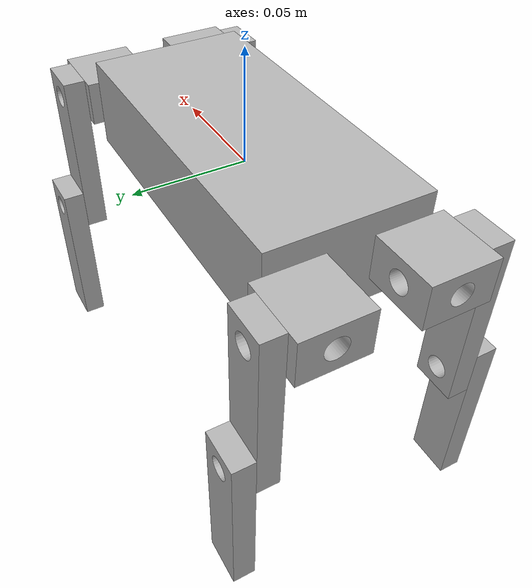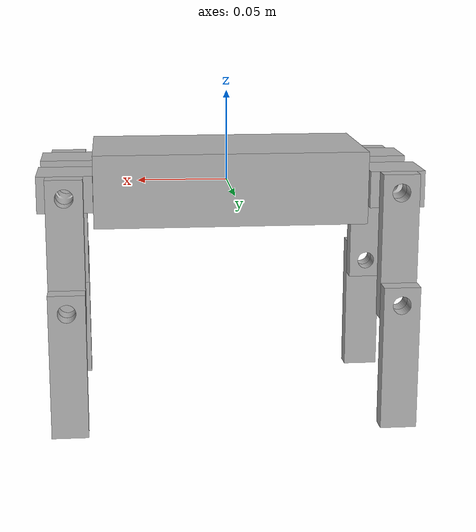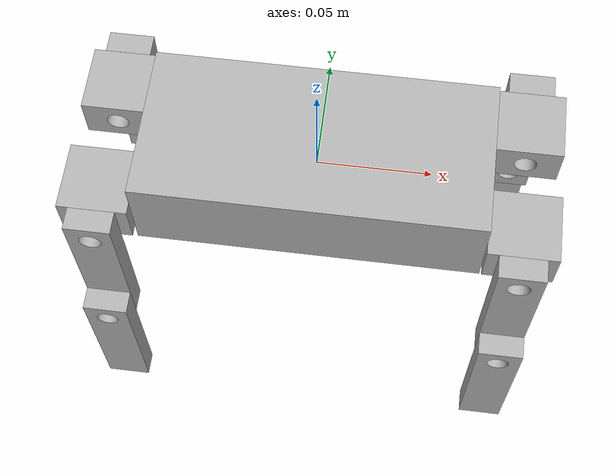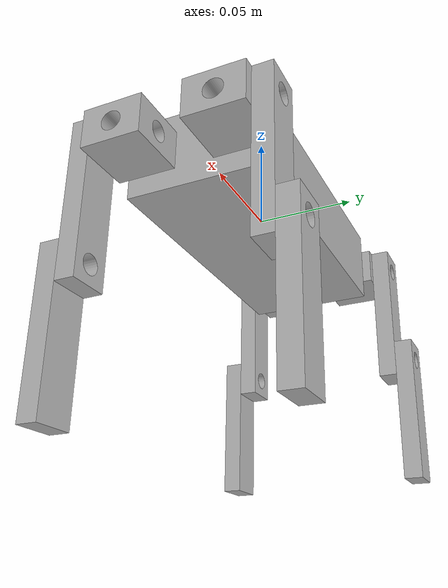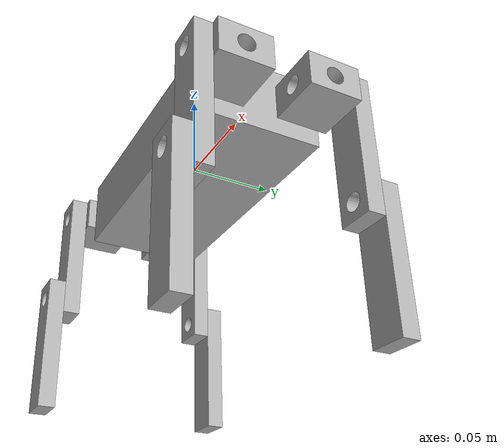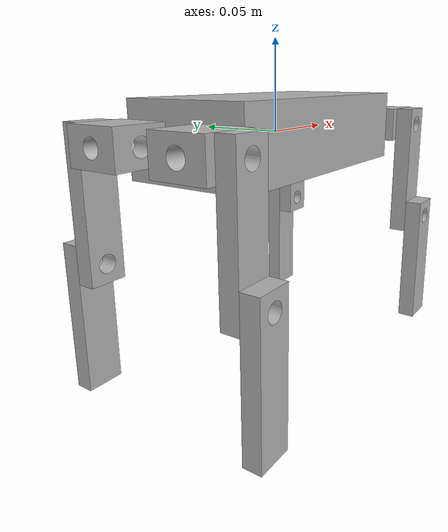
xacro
<?xml version="1.0" ?>
<robot name="dot" xmlns:xacro="http://www.ros.org/wiki/xacro">

<xacro:include filename="$(find dot_description)/urdf/materials.xacro" />
<xacro:include filename="$(find dot_description)/urdf/dot.trans" />
<xacro:include filename="$(find dot_description)/urdf/dot.gazebo" />
<link name="base_link">
  <inertial>
    <origin rpy="0 0 0" xyz="0.0 0.0 0.0"/>
    <mass value="3.112038732519901"/>
    <inertia ixx="0.001668" ixy="0.0" ixz="0.0" iyy="0.006274" iyz="0.0" izz="0.007065"/>
  </inertial>
  <visual>
    <origin rpy="0 0 0" xyz="0 0 0"/>
    <geometry>
      <mesh filename="package://dot_description/meshes/base_link.stl" scale="0.001 0.001 0.001"/>
    </geometry>
    <material name="silver"/>
  </visual>
  <collision>
    <origin rpy="0 0 0" xyz="0 0 0"/>
    <geometry>
      <mesh filename="package://dot_description/meshes/base_link.stl" scale="0.001 0.001 0.001"/>
    </geometry>
  </collision>
</link>

<link name="rf_hip_link_1">
  <inertial>
    <origin rpy="0 0 0" xyz="0.014999999999911737 8.828354713941167e-14 0.0"/>
    <mass value="0.1095410798373143"/>
    <inertia ixx="1.4e-05" ixy="0.0" ixz="0.0" iyy="1.4e-05" iyz="0.0" izz="1.8e-05"/>
  </inertial>
  <visual>
    <origin rpy="0 0 0" xyz="-0.075 0.025 -0.0"/>
    <geometry>
      <mesh filename="package://dot_description/meshes/rf_hip_link_1.stl" scale="0.001 0.001 0.001"/>
    </geometry>
    <material name="silver"/>
  </visual>
  <collision>
    <origin rpy="0 0 0" xyz="-0.075 0.025 -0.0"/>
    <geometry>
      <mesh filename="package://dot_description/meshes/rf_hip_link_1.stl" scale="0.001 0.001 0.001"/>
    </geometry>
  </collision>
</link>

<link name="lf_hip_link_1">
  <inertial>
    <origin rpy="0 0 0" xyz="0.014999999999911737 8.828354713941167e-14 0.0"/>
    <mass value="0.1095410798373143"/>
    <inertia ixx="1.4e-05" ixy="0.0" ixz="0.0" iyy="1.4e-05" iyz="0.0" izz="1.8e-05"/>
  </inertial>
  <visual>
    <origin rpy="0 0 0" xyz="-0.075 -0.025 -0.0"/>
    <geometry>
      <mesh filename="package://dot_description/meshes/lf_hip_link_1.stl" scale="0.001 0.001 0.001"/>
    </geometry>
    <material name="silver"/>
  </visual>
  <collision>
    <origin rpy="0 0 0" xyz="-0.075 -0.025 -0.0"/>
    <geometry>
      <mesh filename="package://dot_description/meshes/lf_hip_link_1.stl" scale="0.001 0.001 0.001"/>
    </geometry>
  </collision>
</link>

<link name="lh_hip_link_1">
  <inertial>
    <origin rpy="0 0 0" xyz="-0.01500000000008829 8.828354713941167e-14 0.0"/>
    <mass value="0.1095410798373143"/>
    <inertia ixx="1.4e-05" ixy="-0.0" ixz="-0.0" iyy="1.4e-05" iyz="0.0" izz="1.8e-05"/>
  </inertial>
  <visual>
    <origin rpy="0 0 0" xyz="0.075 -0.025 -0.0"/>
    <geometry>
      <mesh filename="package://dot_description/meshes/lh_hip_link_1.stl" scale="0.001 0.001 0.001"/>
    </geometry>
    <material name="silver"/>
  </visual>
  <collision>
    <origin rpy="0 0 0" xyz="0.075 -0.025 -0.0"/>
    <geometry>
      <mesh filename="package://dot_description/meshes/lh_hip_link_1.stl" scale="0.001 0.001 0.001"/>
    </geometry>
  </collision>
</link>

<link name="rh_hip_link_1">
  <inertial>
    <origin rpy="0 0 0" xyz="-0.01500000000008829 8.828354713941167e-14 0.0"/>
    <mass value="0.1095410798373143"/>
    <inertia ixx="1.4e-05" ixy="0.0" ixz="-0.0" iyy="1.4e-05" iyz="0.0" izz="1.8e-05"/>
  </inertial>
  <visual>
    <origin rpy="0 0 0" xyz="0.075 0.025 -0.0"/>
    <geometry>
      <mesh filename="package://dot_description/meshes/rh_hip_link_1.stl" scale="0.001 0.001 0.001"/>
    </geometry>
    <material name="silver"/>
  </visual>
  <collision>
    <origin rpy="0 0 0" xyz="0.075 0.025 -0.0"/>
    <geometry>
      <mesh filename="package://dot_description/meshes/rh_hip_link_1.stl" scale="0.001 0.001 0.001"/>
    </geometry>
  </collision>
</link>

<link name="rf_upper_leg_link_1">
  <inertial>
    <origin rpy="0 0 0" xyz="-5.69266855876549e-14 -0.0049999999999999906 -0.030000000000000006"/>
    <mass value="0.11326924883465952"/>
    <inertia ixx="5.7e-05" ixy="0.0" ixz="-0.0" iyy="6e-05" iyz="0.0" izz="5e-06"/>
  </inertial>
  <visual>
    <origin rpy="0 0 0" xyz="-0.09 0.04 -0.0"/>
    <geometry>
      <mesh filename="package://dot_description/meshes/rf_upper_leg_link_1.stl" scale="0.001 0.001 0.001"/>
    </geometry>
    <material name="silver"/>
  </visual>
  <collision>
    <origin rpy="0 0 0" xyz="-0.09 0.04 -0.0"/>
    <geometry>
      <mesh filename="package://dot_description/meshes/rf_upper_leg_link_1.stl" scale="0.001 0.001 0.001"/>
    </geometry>
  </collision>
</link>

<link name="lf_upper_leg_link_1">
  <inertial>
    <origin rpy="0 0 0" xyz="-5.69266855876549e-14 0.0049999999999999975 -0.030000000000000006"/>
    <mass value="0.11326924883465952"/>
    <inertia ixx="5.7e-05" ixy="-0.0" ixz="-0.0" iyy="6e-05" iyz="-0.0" izz="5e-06"/>
  </inertial>
  <visual>
    <origin rpy="0 0 0" xyz="-0.09 -0.04 -0.0"/>
    <geometry>
      <mesh filename="package://dot_description/meshes/lf_upper_leg_link_1.stl" scale="0.001 0.001 0.001"/>
    </geometry>
    <material name="silver"/>
  </visual>
  <collision>
    <origin rpy="0 0 0" xyz="-0.09 -0.04 -0.0"/>
    <geometry>
      <mesh filename="package://dot_description/meshes/lf_upper_leg_link_1.stl" scale="0.001 0.001 0.001"/>
    </geometry>
  </collision>
</link>

<link name="lh_upper_leg_link_1">
  <inertial>
    <origin rpy="0 0 0" xyz="5.69266855876549e-14 0.0049999999999999975 -0.030000000000000006"/>
    <mass value="0.11326924883465952"/>
    <inertia ixx="5.7e-05" ixy="0.0" ixz="0.0" iyy="6e-05" iyz="-0.0" izz="5e-06"/>
  </inertial>
  <visual>
    <origin rpy="0 0 0" xyz="0.09 -0.04 -0.0"/>
    <geometry>
      <mesh filename="package://dot_description/meshes/lh_upper_leg_link_1.stl" scale="0.001 0.001 0.001"/>
    </geometry>
    <material name="silver"/>
  </visual>
  <collision>
    <origin rpy="0 0 0" xyz="0.09 -0.04 -0.0"/>
    <geometry>
      <mesh filename="package://dot_description/meshes/lh_upper_leg_link_1.stl" scale="0.001 0.001 0.001"/>
    </geometry>
  </collision>
</link>

<link name="rh_upper_leg_link_1">
  <inertial>
    <origin rpy="0 0 0" xyz="5.69266855876549e-14 -0.0049999999999999906 -0.030000000000000006"/>
    <mass value="0.11326924883465952"/>
    <inertia ixx="5.7e-05" ixy="-0.0" ixz="0.0" iyy="6e-05" iyz="0.0" izz="5e-06"/>
  </inertial>
  <visual>
    <origin rpy="0 0 0" xyz="0.09 0.04 -0.0"/>
    <geometry>
      <mesh filename="package://dot_description/meshes/rh_upper_leg_link_1.stl" scale="0.001 0.001 0.001"/>
    </geometry>
    <material name="silver"/>
  </visual>
  <collision>
    <origin rpy="0 0 0" xyz="0.09 0.04 -0.0"/>
    <geometry>
      <mesh filename="package://dot_description/meshes/rh_upper_leg_link_1.stl" scale="0.001 0.001 0.001"/>
    </geometry>
  </collision>
</link>

<link name="rf_lower_leg_link_1">
  <inertial>
    <origin rpy="0 0 0" xyz="-2.6978419498391304e-14 -0.0049999999999999975 -0.03154864025723239"/>
    <mass value="0.11943462441732976"/>
    <inertia ixx="6.2e-05" ixy="-0.0" ixz="0.0" iyy="6.5e-05" iyz="0.0" izz="5e-06"/>
  </inertial>
  <visual>
    <origin rpy="0 0 0" xyz="-0.09 0.05 0.06"/>
    <geometry>
      <mesh filename="package://dot_description/meshes/rf_lower_leg_link_1.stl" scale="0.001 0.001 0.001"/>
    </geometry>
    <material name="silver"/>
  </visual>
  <collision>
    <origin rpy="0 0 0" xyz="-0.09 0.05 0.06"/>
    <geometry>
      <mesh filename="package://dot_description/meshes/rf_lower_leg_link_1.stl" scale="0.001 0.001 0.001"/>
    </geometry>
  </collision>
</link>

<link name="lf_lower_leg_link_1">
  <inertial>
    <origin rpy="0 0 0" xyz="-2.6978419498391304e-14 0.0050000000000000044 -0.03154864025723239"/>
    <mass value="0.11943462441732976"/>
    <inertia ixx="6.2e-05" ixy="0.0" ixz="0.0" iyy="6.5e-05" iyz="-0.0" izz="5e-06"/>
  </inertial>
  <visual>
    <origin rpy="0 0 0" xyz="-0.09 -0.05 0.06"/>
    <geometry>
      <mesh filename="package://dot_description/meshes/lf_lower_leg_link_1.stl" scale="0.001 0.001 0.001"/>
    </geometry>
    <material name="silver"/>
  </visual>
  <collision>
    <origin rpy="0 0 0" xyz="-0.09 -0.05 0.06"/>
    <geometry>
      <mesh filename="package://dot_description/meshes/lf_lower_leg_link_1.stl" scale="0.001 0.001 0.001"/>
    </geometry>
  </collision>
</link>

<link name="lh_lower_leg_link_1">
  <inertial>
    <origin rpy="0 0 0" xyz="2.6978419498391304e-14 0.0050000000000000044 -0.03154864025723239"/>
    <mass value="0.11943462441732976"/>
    <inertia ixx="6.2e-05" ixy="-0.0" ixz="-0.0" iyy="6.5e-05" iyz="-0.0" izz="5e-06"/>
  </inertial>
  <visual>
    <origin rpy="0 0 0" xyz="0.09 -0.05 0.06"/>
    <geometry>
      <mesh filename="package://dot_description/meshes/lh_lower_leg_link_1.stl" scale="0.001 0.001 0.001"/>
    </geometry>
    <material name="silver"/>
  </visual>
  <collision>
    <origin rpy="0 0 0" xyz="0.09 -0.05 0.06"/>
    <geometry>
      <mesh filename="package://dot_description/meshes/lh_lower_leg_link_1.stl" scale="0.001 0.001 0.001"/>
    </geometry>
  </collision>
</link>

<link name="rh_lower_leg_link_1">
  <inertial>
    <origin rpy="0 0 0" xyz="2.6978419498391304e-14 -0.0049999999999999975 -0.03154864025723239"/>
    <mass value="0.11943462441732976"/>
    <inertia ixx="6.2e-05" ixy="0.0" ixz="-0.0" iyy="6.5e-05" iyz="0.0" izz="5e-06"/>
  </inertial>
  <visual>
    <origin rpy="0 0 0" xyz="0.09 0.05 0.06"/>
    <geometry>
      <mesh filename="package://dot_description/meshes/rh_lower_leg_link_1.stl" scale="0.001 0.001 0.001"/>
    </geometry>
    <material name="silver"/>
  </visual>
  <collision>
    <origin rpy="0 0 0" xyz="0.09 0.05 0.06"/>
    <geometry>
      <mesh filename="package://dot_description/meshes/rh_lower_leg_link_1.stl" scale="0.001 0.001 0.001"/>
    </geometry>
  </collision>
</link>

<link name="rf_foot_link"/>

<link name="lf_foot_link"/>

<link name="rh_foot_link"/>

<link name="lh_foot_link"/>

<joint name="Rev1" type="continuous">
  <origin rpy="0 0 0" xyz="0.075 -0.025 0.0"/>
  <parent link="base_link"/>
  <child link="rf_hip_link_1"/>
  <axis xyz="1.0 0.0 0.0"/>
</joint>

<joint name="Rev2" type="continuous">
  <origin rpy="0 0 0" xyz="0.075 0.025 0.0"/>
  <parent link="base_link"/>
  <child link="lf_hip_link_1"/>
  <axis xyz="1.0 0.0 0.0"/>
</joint>

<joint name="Rev3" type="continuous">
  <origin rpy="0 0 0" xyz="-0.075 0.025 0.0"/>
  <parent link="base_link"/>
  <child link="lh_hip_link_1"/>
  <axis xyz="1.0 0.0 0.0"/>
</joint>

<joint name="Rev4" type="continuous">
  <origin rpy="0 0 0" xyz="-0.075 -0.025 0.0"/>
  <parent link="base_link"/>
  <child link="rh_hip_link_1"/>
  <axis xyz="1.0 0.0 0.0"/>
</joint>

<joint name="Rev5" type="continuous">
  <origin rpy="0 0 0" xyz="0.015 -0.015 0.0"/>
  <parent link="rf_hip_link_1"/>
  <child link="rf_upper_leg_link_1"/>
  <axis xyz="0.0 1.0 0.0"/>
</joint>

<joint name="Rev6" type="continuous">
  <origin rpy="0 0 0" xyz="0.015 0.015 0.0"/>
  <parent link="lf_hip_link_1"/>
  <child link="lf_upper_leg_link_1"/>
  <axis xyz="0.0 1.0 0.0"/>
</joint>

<joint name="Rev7" type="continuous">
  <origin rpy="0 0 0" xyz="-0.015 0.015 0.0"/>
  <parent link="lh_hip_link_1"/>
  <child link="lh_upper_leg_link_1"/>
  <axis xyz="0.0 1.0 0.0"/>
</joint>

<joint name="Rev8" type="continuous">
  <origin rpy="0 0 0" xyz="-0.015 -0.015 0.0"/>
  <parent link="rh_hip_link_1"/>
  <child link="rh_upper_leg_link_1"/>
  <axis xyz="0.0 1.0 0.0"/>
</joint>

<joint name="Rev9" type="continuous">
  <origin rpy="0 0 0" xyz="0.0 -0.01 -0.06"/>
  <parent link="rf_upper_leg_link_1"/>
  <child link="rf_lower_leg_link_1"/>
  <axis xyz="0.0 1.0 0.0"/>
</joint>

<joint name="Rev10" type="continuous">
  <origin rpy="0 0 0" xyz="0.0 0.01 -0.06"/>
  <parent link="lf_upper_leg_link_1"/>
  <child link="lf_lower_leg_link_1"/>
  <axis xyz="0.0 1.0 0.0"/>
</joint>

<joint name="Rev11" type="continuous">
  <origin rpy="0 0 0" xyz="0.0 0.01 -0.06"/>
  <parent link="lh_upper_leg_link_1"/>
  <child link="lh_lower_leg_link_1"/>
  <axis xyz="0.0 1.0 0.0"/>
</joint>

<joint name="Rev12" type="continuous">
  <origin rpy="0 0 0" xyz="0.0 -0.01 -0.06"/>
  <parent link="rh_upper_leg_link_1"/>
  <child link="rh_lower_leg_link_1"/>
  <axis xyz="0.0 1.0 0.0"/>
</joint>

<joint name="RFfoot" type="fixed">
  <origin rpy="0 0 0" xyz="0.0 0.0 -0.07"/>
  <parent link="rf_lower_leg_link_1"/>
  <child link="rf_foot_link"/>
</joint>

<joint name="LFfoot" type="fixed">
  <origin rpy="0 0 0" xyz="0.0 0.0 -0.07"/>
  <parent link="lf_lower_leg_link_1"/>
  <child link="lf_foot_link"/>
</joint>

<joint name="LHfoot" type="fixed">
  <origin rpy="0 0 0" xyz="0.0 0.0 -0.07"/>
  <parent link="lh_lower_leg_link_1"/>
  <child link="lh_foot_link"/>
</joint>

<joint name="RHfoot" type="fixed">
  <origin rpy="0 0 0" xyz="0.0 0.0 -0.07"/>
  <parent link="rh_lower_leg_link_1"/>
  <child link="rh_foot_link"/>
</joint>

</robot>

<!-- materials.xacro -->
<robot name="dot" xmlns:xacro="http://www.ros.org/wiki/xacro" >

<material name="silver">
  <color rgba="0.700 0.700 0.700 1.000"/>
</material>

</robot>

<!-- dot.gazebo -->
<robot name="dot" xmlns:xacro="http://www.ros.org/wiki/xacro" >

<xacro:property name="body_color" value="Gazebo/Silver" />

<gazebo>
  <plugin filename="libgazebo_ros_control.so" name="control"/>
</gazebo>
<gazebo reference="base_link">
  <material>${body_color}</material>
  <mu1>0.2</mu1>
  <mu2>0.2</mu2>
  <selfCollide>true</selfCollide>
  <gravity>true</gravity>
</gazebo>

<gazebo reference="rf_hip_link_1">
  <material>${body_color}</material>
  <mu1>0.2</mu1>
  <mu2>0.2</mu2>
  <selfCollide>true</selfCollide>
</gazebo>

<gazebo reference="lf_hip_link_1">
  <material>${body_color}</material>
  <mu1>0.2</mu1>
  <mu2>0.2</mu2>
  <selfCollide>true</selfCollide>
</gazebo>

<gazebo reference="lh_hip_link_1">
  <material>${body_color}</material>
  <mu1>0.2</mu1>
  <mu2>0.2</mu2>
  <selfCollide>true</selfCollide>
</gazebo>

<gazebo reference="rh_hip_link_1">
  <material>${body_color}</material>
  <mu1>0.2</mu1>
  <mu2>0.2</mu2>
  <selfCollide>true</selfCollide>
</gazebo>

<gazebo reference="rf_upper_leg_link_1">
  <material>${body_color}</material>
  <mu1>0.2</mu1>
  <mu2>0.2</mu2>
  <selfCollide>true</selfCollide>
</gazebo>

<gazebo reference="lf_upper_leg_link_1">
  <material>${body_color}</material>
  <mu1>0.2</mu1>
  <mu2>0.2</mu2>
  <selfCollide>true</selfCollide>
</gazebo>

<gazebo reference="lh_upper_leg_link_1">
  <material>${body_color}</material>
  <mu1>0.2</mu1>
  <mu2>0.2</mu2>
  <selfCollide>true</selfCollide>
</gazebo>

<gazebo reference="rh_upper_leg_link_1">
  <material>${body_color}</material>
  <mu1>0.2</mu1>
  <mu2>0.2</mu2>
  <selfCollide>true</selfCollide>
</gazebo>

<gazebo reference="rf_lower_leg_link_1">
  <material>${body_color}</material>
  <mu1>0.2</mu1>
  <mu2>0.2</mu2>
  <selfCollide>true</selfCollide>
</gazebo>

<gazebo reference="lf_lower_leg_link_1">
  <material>${body_color}</material>
  <mu1>0.2</mu1>
  <mu2>0.2</mu2>
  <selfCollide>true</selfCollide>
</gazebo>

<gazebo reference="lh_lower_leg_link_1">
  <material>${body_color}</material>
  <mu1>0.2</mu1>
  <mu2>0.2</mu2>
  <selfCollide>true</selfCollide>
</gazebo>

<gazebo reference="rh_lower_leg_link_1">
  <material>${body_color}</material>
  <mu1>0.2</mu1>
  <mu2>0.2</mu2>
  <selfCollide>true</selfCollide>
</gazebo>

</robot>
